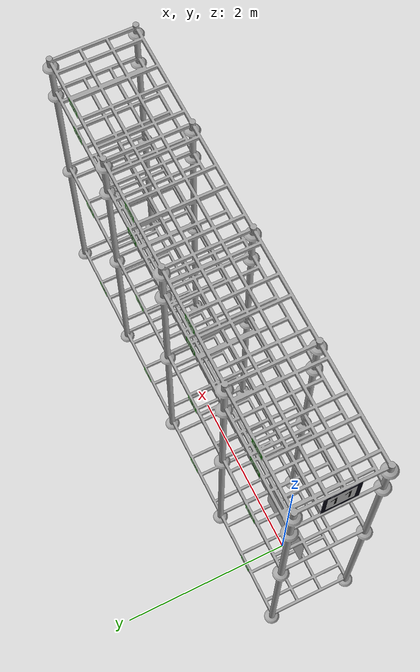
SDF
<?xml version="1.0" ?>
<sdf version="1.5">
  <model name="shelves imav">
    <static>true</static>
    <link name="link">
      <collision name="collision">
        <geometry>
          <mesh>
            <uri>model://shelves_imav/meshes/shelves_imav_collision.dae</uri>
            <scale>1 1.2 1.2</scale>
          </mesh>
        </geometry>
      </collision>
      <visual name="visual">
        <geometry>
          <mesh>
            <uri>model://shelves_imav/meshes/shelves_imav.dae</uri>
            <scale>1 1 1</scale>
          </mesh>
        </geometry>
      </visual>

      <!-- put visuals here -->
      <visual name="visual_qr">
        <pose>0 0.026 1 0 0 0</pose>
        <geometry>
          <box>
            <size>0.8 0.005 0.6</size>
          </box>
        </geometry>
        <material>
          <script>
            <uri>model://shelves_imav/materials/scripts</uri>
            <uri>model://shelves_imav/materials/textures</uri>
            <name>QR_code/qr1</name>
          </script>
        </material>
      </visual>
      <!-- put visuals above -->

    </link>
  </model>
</sdf>
